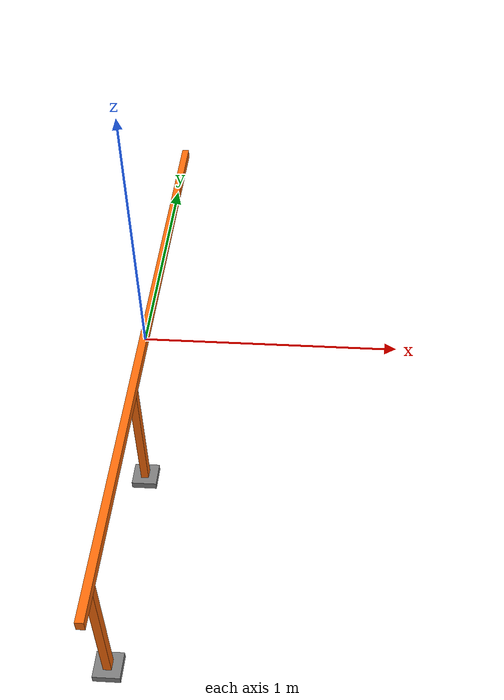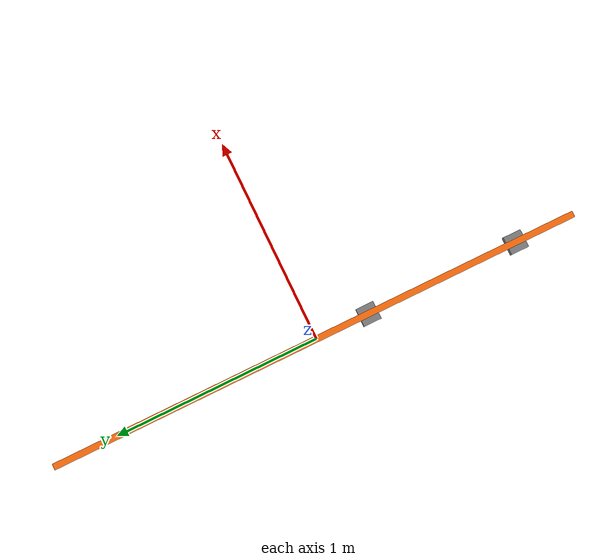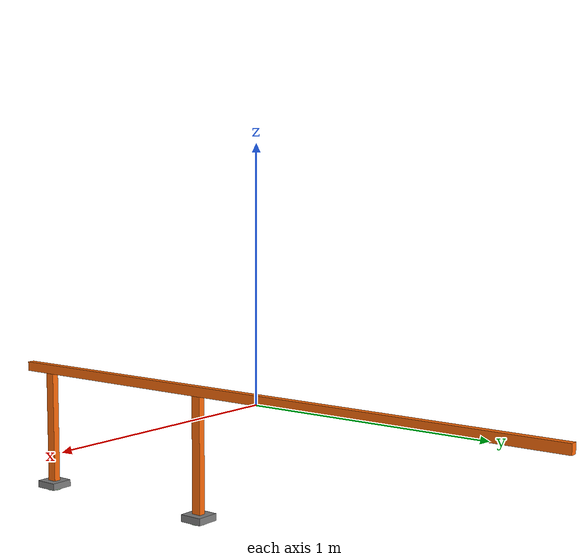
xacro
<?xml version="1.0"?>
<robot name="worker_cameras" xmlns:xacro="http://ros.org/wiki/xacro">

  <!-- camera looking at the insect hotel parts next to the worker -->
  <xacro:include filename="$(find pbr_gazebo)/urdf/rgb_camera.gazebo.xacro" />
  <xacro:rgb_camera camera_name="inventory_cam"/>
  <joint name="inventory_cam_stick_to_inventory_cam" type="fixed">
    <parent link="inventory_cam_stick_box"/>
    <child link="inventory_cam_box_link"/>
    <origin xyz="0 0 0" rpy="3.14 0 -1.57"/>
  </joint>
  <!-- put camera on a stick so that it doesn't look like is flying -->
  <xacro:include filename="$(find pbr_gazebo)/urdf/box.gazebo.xacro" />
  <xacro:box name="inventory_cam_stick" width="0.03" length="0.04" height="0.5" color="Black" />
  <joint name="scaffold_to_inventory_cam_stick_box" type="fixed">
    <parent link="scaffold_box"/>
    <child link="inventory_cam_stick_box"/>
    <origin xyz="0 -1.16 -0.5" rpy="0 0 0"/>
  </joint>

  <!-- camera looking at the worker assembly process -->
  <xacro:rgb_camera camera_name="worker_cam"/>
  <joint name="worker_cam_stick_to_worker_cam" type="fixed">
    <parent link="worker_cam_stick_box"/>
    <child link="worker_cam_box_link"/>
    <origin xyz="0 0 0" rpy="3.14 0 -1.57"/>
  </joint>
  <!-- put camera on a stick so that it doesn't look like is flying -->
  <xacro:box name="worker_cam_stick" width="0.03" length="0.04" height="0.5" color="Black" />
  <joint name="scaffold_to_worker_cam_stick_box" type="fixed">
    <parent link="scaffold_box"/>
    <child link="worker_cam_stick_box"/>
    <origin xyz="0 -0.3 -0.5" rpy="0 0 0"/>
  </joint>

  <!-- stick going to wall -->
  <xacro:box name="scaffold" width="0.03" length="2.6" height="0.04" color="Black" />

  <link name="worker_cameras_link"/>
  <joint name="camera_link_to_scaffold" type="fixed">
    <parent link="worker_cameras_link"/>
    <child link="scaffold_box"/>
    <origin xyz="0 0 0" rpy="0 0 0" />
  </joint>

  <gazebo>
    <static>true</static>
  </gazebo>

</robot>

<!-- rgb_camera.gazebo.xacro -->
<robot name="camera_robot" xmlns:xacro="http://ros.org/wiki/xacro">

  <xacro:macro name="rgb_camera" params="camera_name">
    <link name="${camera_name}_link">
      <visual>
        <geometry>
          <cylinder length="0.01" radius="0.03"/>
        </geometry>
        <material name="light_green">
          <color rgba="0 1 0 0.3"/>
        </material>
      </visual>
      <collision>
        <geometry>
          <cylinder length="0.01" radius="0.03"/>
        </geometry>
      </collision>
      <inertial>
        <origin xyz="0 0 0" rpy="0 0 0"/>
        <mass value="0.2"/>
        <inertia ixx="2.2124416e-03" ixy="-1.2294101e-05" ixz="3.4938785e-05"
                 iyy="2.1193702e-03" iyz="-5.0120904e-06"
                 izz="2.0064271e-03" />
      </inertial>
    </link>

    <link name="${camera_name}_box_link">
      <visual>
        <geometry>
          <box size="0.1 0.1 0.03"/>
        </geometry>
        <material name="grey">
          <color rgba="0.5 0.5 0.5 1"/>
        </material>
      </visual>
      <collision>
        <geometry>
          <box size="0.1 0.1 0.03"/>
        </geometry>
      </collision>
      <inertial>
        <origin xyz="0 0 0" rpy="0 0 0"/>
        <mass value="0.2"/>
        <inertia ixx="2.2124416e-03" ixy="-1.2294101e-05" ixz="3.4938785e-05"
                 iyy="2.1193702e-03" iyz="-5.0120904e-06"
                 izz="2.0064271e-03" />
      </inertial>
    </link>

    <joint name="${camera_name}_box_link_to_${camera_name}_link" type="fixed">
      <parent link="${camera_name}_box_link"/>
      <child link="${camera_name}_link"/>
      <origin xyz="0 0 0.02" rpy="0 0 0"/>
    </joint>

    <link name="${camera_name}_rgb_optical_frame"/>

    <joint name="${camera_name}_link_to_${camera_name}_rgb_optical_frame" type="fixed">
      <parent link="${camera_name}_link"/>
      <child link="${camera_name}_rgb_optical_frame"/>
      <origin xyz="0 0 0" rpy="0 -1.57 1.57"/>
    </joint>

    <!-- gazebo logical camera -->
    <joint name="${camera_name}_rgb_logical_joint" type="fixed">
      <origin xyz="0 0 0" rpy="0 0 0" />
      <parent link="${camera_name}_rgb_optical_frame" />
      <child link="${camera_name}_logical_frame" />
    </joint>
    <link name="${camera_name}_logical_frame"/>

    <gazebo reference="${camera_name}_logical_frame">
      <sensor name="logical_camera" type="logical_camera">
        <logical_camera>
	        <near>0.05</near>
	        <far>3.50</far>
	        <horizontal_fov>${60.0 * pi/180.0}</horizontal_fov>
	        <aspect_ratio>${640.0/480.0}</aspect_ratio>
        </logical_camera>
        <visualize>false</visualize>
        <always_on>true</always_on>
        <update_rate>10</update_rate>
        <plugin name="logical_camera_plugin" filename="liblogical_camera_plugin.so">
	        <cameraName>${camera_name}</cameraName>
	        <imageTopicName>rgb/logical_image</imageTopicName>
	        <frameName>${camera_name}_logical_frame</frameName>
        </plugin>
      </sensor>
    </gazebo>

    <link name="${camera_name}_depth_optical_frame"/>

    <joint name="${camera_name}_link_to_${camera_name}_depth_optical_frame" type="fixed">
      <parent link="${camera_name}_link"/>
      <child link="${camera_name}_depth_optical_frame"/>
      <origin xyz="0 0 0" rpy="0 -1.57 1.57"/>
    </joint>

    <gazebo reference="${camera_name}_depth_optical_frame">
      <sensor type="depth" name="${camera_name}">
        <update_rate>10.0</update_rate>
        <always_on>true</always_on>
        <camera>
            <horizontal_fov>1.22173</horizontal_fov> <!-- Intel realsense L515 fov: 70 deg = 1.22173 rad -->
            <image>
                <!-- Intel realsense L515 up to 1024 x 768, however to reduce computation w select a lower res -->
                <width>640</width>
                <height>480</height>
                <format>B8G8R8</format>
            </image>
            <clip>
              <near>0.05</near>
              <far>9.0</far>
            </clip>
        </camera>
        <plugin name="${camera_name}_controller" filename="libgazebo_ros_openni_kinect.so">
          <alwaysOn>true</alwaysOn>
          <cameraName>${camera_name}</cameraName>
          <imageTopicName>rgb/image_raw</imageTopicName>
          <cameraInfoTopicName>rgb/camera_info</cameraInfoTopicName>
          <depthImageTopicName>depth_registered/image_raw</depthImageTopicName>
          <depthImageCameraInfoTopicName>depth_registered/camera_info</depthImageCameraInfoTopicName>
          <pointCloudTopicName>depth_registered/points</pointCloudTopicName>
          <frameName>${camera_name}_depth_optical_frame</frameName>
          <pointCloudCutoff>0.25</pointCloudCutoff> <!-- Min depth distance -->
          <pointCloudCutoffMax>9.0</pointCloudCutoffMax> <!-- Max depth distance -->
          <distortionK1>0</distortionK1>
          <distortionK2>0</distortionK2>
          <distortionK3>0</distortionK3>
          <distortionT1>0</distortionT1>
          <distortionT2>0</distortionT2>
        </plugin>
      </sensor>
    </gazebo>

  </xacro:macro>

  <!-- example on how to call this macro -->

</robot>

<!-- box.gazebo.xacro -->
<robot name="box" xmlns:xacro="http://ros.org/wiki/xacro">

  <xacro:macro name="box" params="name width length height cwidth:=0 clength:=0 cheight:=0 color">
    <link name="${name}_box">
      <visual>
        <origin xyz="0 0 ${height/2.0}" rpy="0 0 0"/>
        <geometry>
          <box size="${width} ${length} ${height}"/>
        </geometry>
        <material name="orange">
          <color rgba="${255/255} ${108/255} ${10/255} 1.0"/>
        </material>
      </visual>
      <collision>
        <origin xyz="0 0 ${cheight/2.0}" rpy="0 0 0"/>
        <geometry>
          <box size="${cwidth} ${clength} ${cheight}"/>
        </geometry>
      </collision>
      <inertial>
        <origin xyz="0 0 0" rpy="0 0 0"/>
        <mass value="0.2"/>
        <inertia ixx="2.2124416e-03" ixy="-1.2294101e-05" ixz="3.4938785e-05"
                iyy="2.1193702e-03" iyz="-5.0120904e-06"
                izz="2.0064271e-03" />
      </inertial>
    </link>
  </xacro:macro>

  <!-- example on how to call this macro -->

</robot>
